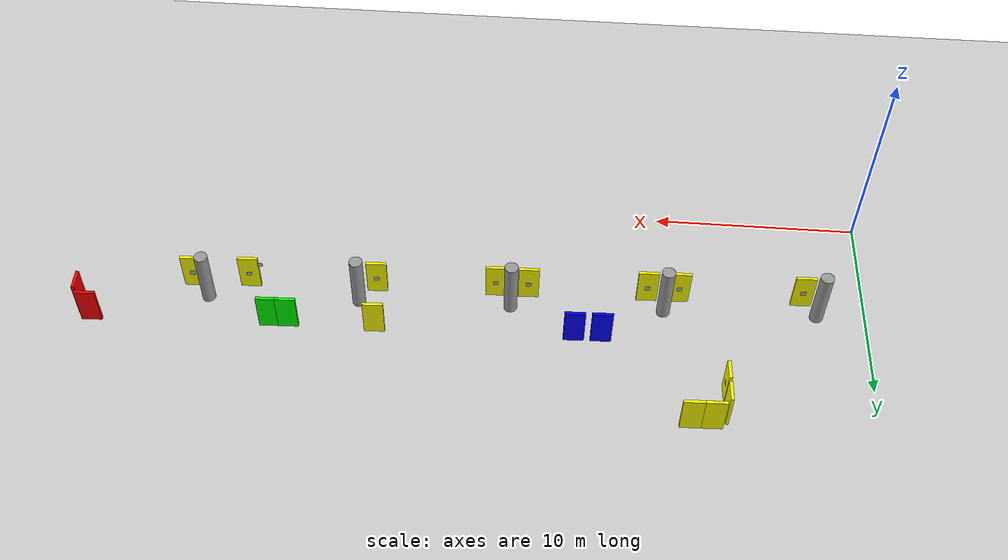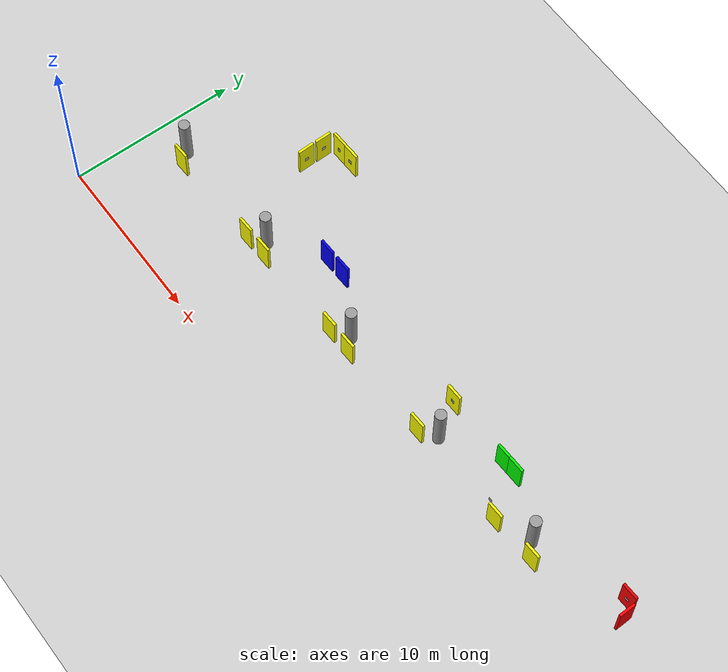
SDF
<sdf version="1.5">
 <world name="default">
  <include><uri>model://sun</uri></include>
  <include><uri>model://ground_plane</uri></include>
  <include><uri>model://5x5_1000-10</uri><pose>29.507050 6.023 1.65 0.0 0.0 1.60479633</pose></include>
  <include>
   <uri>model://pillar</uri>
   <name>pillar1</name>
   <static>true</static>
   <pose>32.100510 6.769004 0.0 0.0 0.0 0.0</pose>
  </include>
  <include>
   <uri>model://pillar</uri>
   <name>pillar2</name>
   <static>true</static>
   <pose>2.342716 5.768001 0.0 0.0 0.0 0.0</pose>
  </include>
  <include>
   <uri>model://pillar</uri>
   <name>pillar3</name>
   <static>true</static>
   <pose>17.231846 6.274395 0.0 0.0 0.0 0.0</pose>
  </include>
  <include>
   <uri>model://pillar</uri>
   <name>pillar4</name>
   <static>true</static>
   <pose>24.666746 6.505016 0.0 0.0 0.0 0.0</pose>
  </include>
  <include>
   <uri>model://pillar</uri>
   <name>pillar5</name>
   <static>true</static>
   <pose>9.784185 6.009955 0.0 0.0 0.0 0.0</pose>
  </include>
  <include>
   <uri>model://door_yellow</uri>
   <name>door1</name>
   <static>true</static>
   <pose>3.050000 5.000000 0.0 0.0 0.0 0.034</pose>
  </include>
  <include>
   <uri>model://5x5_1000-0</uri>
   <name>yellowmarker1</name>
   <pose>3.05 5.075 0.8 0.0 0.0 1.60479633</pose>
  </include>
  <include>
   <uri>model://door_yellow</uri>
   <name>door2</name>
   <static>true</static>
   <pose>9.050000 5.200000 0.0 0.0 0.0 0.034000</pose>
  </include>
  <include>
   <uri>model://5x5_1000-0</uri>
   <name>yellowmarker2</name>
   <pose>9.050000 5.275000 0.8 0.0 0.0 1.60479633</pose>
  </include>
  <include>
   <uri>model://door_yellow</uri>
   <name>door3</name>
   <static>true</static>
   <pose>10.60000 5.250000 0.0 0.0 0.0 0.034000</pose>
  </include>
  <include>
   <uri>model://5x5_1000-0</uri>
   <name>yellowmarker3</name>
   <pose>10.60000 5.325000 0.8 0.0 0.0 1.60479633</pose>
  </include>
  <include>
   <uri>model://door_yellow</uri>
   <name>door4</name>
   <static>true</static>
   <pose>16.40000 5.470000 0.0 0.0 0.0 0.034000</pose>
  </include>
  <include>
   <uri>model://5x5_1000-0</uri>
   <name>yellowmarker4</name>
   <pose>16.40000 5.545000 0.8 0.0 0.0 1.60479633</pose>
  </include>
  <include>
   <uri>model://door_yellow</uri>
   <name>door5</name>
   <static>true</static>
   <pose>18.0000 5.490000 0.0 0.0 0.0 0.034000</pose>
  </include>
  <include>
   <uri>model://5x5_1000-0</uri>
   <name>yellowmarker5</name>
   <pose>18.0000 5.565000 0.8 0.0 0.0 1.60479633</pose>
  </include>
  <include>
   <uri>model://door_yellow</uri>
   <name>door6</name>
   <static>true</static>
   <pose>23.8500 5.680000 0.0 0.0 0.0 0.034000</pose>
  </include>
  <include>
   <uri>model://5x5_1000-0</uri>
   <name>yellowmarker6</name>
   <pose>23.8500 5.755000 0.8 0.0 0.0 1.60479633</pose>
  </include>
  <include>
   <uri>model://door_yellow</uri>
   <name>door7</name>
   <static>true</static>
   <pose>30.1500 5.850000 0.0 0.0 0.0 0.034000</pose>
  </include>
  <include>
   <uri>model://5x5_1000-0</uri>
   <name>yellowmarker7</name>
   <pose>30.1500 5.9250000 0.8 0.0 0.0 1.60479633</pose>
  </include>
  <include>
   <uri>model://door_yellow</uri>
   <name>door8</name>
   <static>true</static>
   <pose>32.9500 6.0000 0.0 0.0 0.0 0.034000</pose>
  </include>
  <include>
   <uri>model://5x5_1000-0</uri>
   <name>yellowmarker8</name>
   <pose>32.9500 6.07500 0.8 0.0 0.0 1.60479633</pose>
  </include>
  <include>
   <uri>model://door_red</uri>
   <name>door9</name>
   <static>true</static>
   <pose>38.1500 7.8000 0.0 0.0 0.0 1.60479633</pose>
  </include>
  <include>
   <uri>model://5x5_1000-1</uri>
   <name>redmarker9</name>
   <pose>38.07500 7.8000 0.8 0.0 0.0 3.17559265679</pose>
  </include>
  <include>
   <uri>model://door_red</uri>
   <name>door10</name>
   <static>true</static>
   <pose>37.5 8.55 0.0 0.0 0.0 0.034</pose>
  </include>
  <include>
   <uri>model://5x5_1000-1</uri>
   <name>redmarker10</name>
   <pose>37.5 8.475 0.8 0.0 0.0 -1.53679633</pose>
  </include>
  <include>
   <uri>model://door_green</uri>
   <name>door11</name>
   <static>true</static>
   <pose>28.8 8.25 0.0 0.0 0.0 0.034</pose>
  </include>
  <include>
   <uri>model://door_green</uri>
   <name>door12</name>
   <static>true</static>
   <pose>27.9 8.22 0.0 0.0 0.0 0.034</pose>
  </include>
  <include>
   <uri>model://door_yellow</uri>
   <name>door13</name>
   <static>true</static>
   <pose>23.700 8.2000 0.0 0.0 0.0 0.034000</pose>
  </include>
  <include>
   <uri>model://5x5_1000-0</uri>
   <name>yellowmarker13</name>
   <pose>23.700 8.12500 0.8 0.0 0.0 -1.53679633</pose>
  </include>
  <include>
   <uri>model://door_blue</uri>
   <name>door14</name>
   <static>true</static>
   <pose>14.100 8.0000 0.0 0.0 0.0 0.034000</pose>
  </include>
  <include>
   <uri>model://door_blue</uri>
   <name>door15</name>
   <static>true</static>
   <pose>12.800 7.9600 0.0 0.0 0.0 0.034000</pose>
  </include>
  <include>
   <uri>model://door_yellow</uri>
   <name>door16</name>
   <static>true</static>
   <pose>8.65 12.5800 0.0 0.0 0.0 0.034000</pose>
  </include>
  <include>
   <uri>model://5x5_1000-0</uri>
   <name>yellowmarker16</name>
   <pose>8.65 12.5050 0.8 0.0 0.0 -1.53679633</pose>
  </include>
  <include>
   <uri>model://door_yellow</uri>
   <name>door17</name>
   <static>true</static>
   <pose>7.65 12.5500 0.0 0.0 0.0 0.034000</pose>
  </include>
  <include>
   <uri>model://5x5_1000-0</uri>
   <name>yellowmarker17</name>
   <pose>7.65 12.4750 0.8 0.0 0.0 -1.53679633</pose>
  </include>
  <include>
   <uri>model://door_yellow</uri>
   <name>door18</name>
   <static>true</static>
   <pose>6.98 11.85 0.0 0.0 0.0 1.60479633</pose>
  </include>
  <include>
   <uri>model://5x5_1000-0</uri>
   <name>yellowmarker18</name>
   <pose>7.055 11.85 0.8 0.0 0.0 0.034</pose>
  </include>
  <include>
   <uri>model://door_yellow</uri>
   <name>door19</name>
   <static>true</static>
   <pose>7.0 10.68 0.0 0.0 0.0 1.60479633</pose>
  </include>
  <include>
   <uri>model://5x5_1000-0</uri>
   <name>yellowmarker19</name>
   <pose>7.075 10.68 0.8 0.0 0.0 0.034</pose>
  </include>
 </world>
</sdf>

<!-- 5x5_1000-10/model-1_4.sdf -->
<sdf version="1.4">
  <model name="5x5_1000-10">
    <static>true</static>
    <link name="link">
      <visual name="visual">
        <geometry>
          <mesh>
            <uri>model://5x5_1000-10/meshes/5x5_1000-10.dae</uri>
          <scale>0.5 0.5 0.5</scale></mesh>
        </geometry>
      </visual>
    </link>
  </model>
</sdf>

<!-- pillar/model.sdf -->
<sdf version='1.6'>
  <model name='pillar'>
    <link name='link'>
      <pose frame=''>0 0 1.5 0 -0 0</pose>
      <inertial>
        <mass>1</mass>
        <inertia>
          <ixx>0.145833</ixx>
          <ixy>0</ixy>
          <ixz>0</ixz>
          <iyy>0.145833</iyy>
          <iyz>0</iyz>
          <izz>0.125</izz>
        </inertia>
        <pose frame=''>0 0 0 0 -0 0</pose>
      </inertial>
      <self_collide>0</self_collide>
      <kinematic>0</kinematic>
      <gravity>1</gravity>
      <visual name='visual'>
        <geometry>
          <cylinder>
            <radius>0.325</radius>
            <length>3</length>
          </cylinder>
        </geometry>
        <material>
          <script>
            <name>Gazebo/Grey</name>
            <uri>file://media/materials/scripts/gazebo.material</uri>
          </script>
          <shader type='pixel'>
            <normal_map>__default__</normal_map>
          </shader>
          <ambient>0.3 0.3 0.3 1</ambient>
          <diffuse>0.7 0.7 0.7 1</diffuse>
          <specular>0.01 0.01 0.01 1</specular>
          <emissive>0 0 0 1</emissive>
        </material>
        <pose frame=''>0 0 0 0 -0 0</pose>
        <transparency>0</transparency>
        <cast_shadows>1</cast_shadows>
      </visual>
      <collision name='collision'>
        <laser_retro>0</laser_retro>
        <max_contacts>10</max_contacts>
        <pose frame=''>0 0 0 0 -0 0</pose>
        <geometry>
          <cylinder>
            <radius>0.325</radius>
            <length>3</length>
          </cylinder>
        </geometry>
        <surface>
          <friction>
            <ode>
              <mu>1</mu>
              <mu2>1</mu2>
              <fdir1>0 0 0</fdir1>
              <slip1>0</slip1>
              <slip2>0</slip2>
            </ode>
            <torsional>
              <coefficient>1</coefficient>
              <patch_radius>0</patch_radius>
              <surface_radius>0</surface_radius>
              <use_patch_radius>1</use_patch_radius>
              <ode>
                <slip>0</slip>
              </ode>
            </torsional>
          </friction>
          <bounce>
            <restitution_coefficient>0</restitution_coefficient>
            <threshold>1e+06</threshold>
          </bounce>
          <contact>
            <collide_without_contact>0</collide_without_contact>
            <collide_without_contact_bitmask>1</collide_without_contact_bitmask>
            <collide_bitmask>1</collide_bitmask>
            <ode>
              <soft_cfm>0</soft_cfm>
              <soft_erp>0.2</soft_erp>
              <kp>1e+13</kp>
              <kd>1</kd>
              <max_vel>0.01</max_vel>
              <min_depth>0</min_depth>
            </ode>
            <bullet>
              <split_impulse>1</split_impulse>
              <split_impulse_penetration_threshold>-0.01</split_impulse_penetration_threshold>
              <soft_cfm>0</soft_cfm>
              <soft_erp>0.2</soft_erp>
              <kp>1e+13</kp>
              <kd>1</kd>
            </bullet>
          </contact>
        </surface>
      </collision>
    </link>
    <static>1</static>
    <allow_auto_disable>1</allow_auto_disable>
  </model>
</sdf>

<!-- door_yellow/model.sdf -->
<sdf version='1.6'>
  <model name='door_yellow'>
    <link name='link'>
      <pose frame=''>0 0 1 0 -0 0</pose>
      <inertial>
        <mass>1</mass>
        <inertia>
          <ixx>0.166667</ixx>
          <ixy>0</ixy>
          <ixz>0</ixz>
          <iyy>0.166667</iyy>
          <iyz>0</iyz>
          <izz>0.166667</izz>
        </inertia>
        <pose frame=''>0 0 1 0 -0 0</pose>
      </inertial>
      <self_collide>0</self_collide>
      <kinematic>0</kinematic>
      <gravity>1</gravity>
      <visual name='visual'>
        <geometry>
          <box>
            <size>1 0.15 2</size>
          </box>
        </geometry>
        <material>
          <script>
            <name>Gazebo/Grey</name>
            <uri>file://media/materials/scripts/gazebo.material</uri>
          </script>
          <shader type='pixel'>
            <normal_map>__default__</normal_map>
          </shader>
          <ambient>1 1 0 1</ambient>
          <diffuse>0.7 0.7 0.7 1</diffuse>
          <specular>0.01 0.01 0.01 1</specular>
          <emissive>0 0 0 1</emissive>
        </material>
        <pose frame=''>0 0 0 0 -0 0</pose>
        <transparency>0</transparency>
        <cast_shadows>1</cast_shadows>
      </visual>
      <collision name='collision'>
        <laser_retro>0</laser_retro>
        <max_contacts>10</max_contacts>
        <pose frame=''>0 0 0 0 -0 0</pose>
        <geometry>
          <box>
            <size>1 0.15 2</size>
          </box>
        </geometry>
        <surface>
          <friction>
            <ode>
              <mu>1</mu>
              <mu2>1</mu2>
              <fdir1>0 0 0</fdir1>
              <slip1>0</slip1>
              <slip2>0</slip2>
            </ode>
            <torsional>
              <coefficient>1</coefficient>
              <patch_radius>0</patch_radius>
              <surface_radius>0</surface_radius>
              <use_patch_radius>1</use_patch_radius>
              <ode>
                <slip>0</slip>
              </ode>
            </torsional>
          </friction>
          <bounce>
            <restitution_coefficient>0</restitution_coefficient>
            <threshold>1e+06</threshold>
          </bounce>
          <contact>
            <collide_without_contact>0</collide_without_contact>
            <collide_without_contact_bitmask>1</collide_without_contact_bitmask>
            <collide_bitmask>1</collide_bitmask>
            <ode>
              <soft_cfm>0</soft_cfm>
              <soft_erp>0.2</soft_erp>
              <kp>1e+13</kp>
              <kd>1</kd>
              <max_vel>0.01</max_vel>
              <min_depth>0</min_depth>
            </ode>
            <bullet>
              <split_impulse>1</split_impulse>
              <split_impulse_penetration_threshold>-0.01</split_impulse_penetration_threshold>
              <soft_cfm>0</soft_cfm>
              <soft_erp>0.2</soft_erp>
              <kp>1e+13</kp>
              <kd>1</kd>
            </bullet>
          </contact>
        </surface>
      </collision>
    </link>
    <static>1</static>
    <allow_auto_disable>1</allow_auto_disable>
  </model>
</sdf>

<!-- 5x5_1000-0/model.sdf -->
<sdf version="1.6">
  <model name="5x5_1000-0">
    <static>true</static>
    <link name="link">
      <visual name="visual">
        <geometry>
          <mesh>
            <uri>model://5x5_1000-0/meshes/5x5_1000-0.dae</uri>
          <scale>0.5 0.5 0.5</scale></mesh>
        </geometry>
      </visual>
    </link>
  </model>
</sdf>

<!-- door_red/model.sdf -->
<sdf version='1.6'>
  <model name='door_red'>
    <link name='link'>
      <pose frame=''>0 0 1 0 -0 0</pose>
      <inertial>
        <mass>1</mass>
        <inertia>
          <ixx>0.166667</ixx>
          <ixy>0</ixy>
          <ixz>0</ixz>
          <iyy>0.166667</iyy>
          <iyz>0</iyz>
          <izz>0.166667</izz>
        </inertia>
        <pose frame=''>0 0 1 0 -0 0</pose>
      </inertial>
      <self_collide>0</self_collide>
      <kinematic>0</kinematic>
      <gravity>1</gravity>
      <visual name='visual'>
        <geometry>
          <box>
            <size>1 0.15 2</size>
          </box>
        </geometry>
        <material>
          <script>
            <name>Gazebo/Grey</name>
            <uri>file://media/materials/scripts/gazebo.material</uri>
          </script>
          <shader type='pixel'>
            <normal_map>__default__</normal_map>
          </shader>
          <ambient>1 0 0 1</ambient>
          <diffuse>0.7 0.7 0.7 1</diffuse>
          <specular>0.01 0.01 0.01 1</specular>
          <emissive>0 0 0 1</emissive>
        </material>
        <pose frame=''>0 0 0 0 -0 0</pose>
        <transparency>0</transparency>
        <cast_shadows>1</cast_shadows>
      </visual>
      <collision name='collision'>
        <laser_retro>0</laser_retro>
        <max_contacts>10</max_contacts>
        <pose frame=''>0 0 0 0 -0 0</pose>
        <geometry>
          <box>
            <size>1 0.15 2</size>
          </box>
        </geometry>
        <surface>
          <friction>
            <ode>
              <mu>1</mu>
              <mu2>1</mu2>
              <fdir1>0 0 0</fdir1>
              <slip1>0</slip1>
              <slip2>0</slip2>
            </ode>
            <torsional>
              <coefficient>1</coefficient>
              <patch_radius>0</patch_radius>
              <surface_radius>0</surface_radius>
              <use_patch_radius>1</use_patch_radius>
              <ode>
                <slip>0</slip>
              </ode>
            </torsional>
          </friction>
          <bounce>
            <restitution_coefficient>0</restitution_coefficient>
            <threshold>1e+06</threshold>
          </bounce>
          <contact>
            <collide_without_contact>0</collide_without_contact>
            <collide_without_contact_bitmask>1</collide_without_contact_bitmask>
            <collide_bitmask>1</collide_bitmask>
            <ode>
              <soft_cfm>0</soft_cfm>
              <soft_erp>0.2</soft_erp>
              <kp>1e+13</kp>
              <kd>1</kd>
              <max_vel>0.01</max_vel>
              <min_depth>0</min_depth>
            </ode>
            <bullet>
              <split_impulse>1</split_impulse>
              <split_impulse_penetration_threshold>-0.01</split_impulse_penetration_threshold>
              <soft_cfm>0</soft_cfm>
              <soft_erp>0.2</soft_erp>
              <kp>1e+13</kp>
              <kd>1</kd>
            </bullet>
          </contact>
        </surface>
      </collision>
    </link>
    <static>1</static>
    <allow_auto_disable>1</allow_auto_disable>
  </model>
</sdf>

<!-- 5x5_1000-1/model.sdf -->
<sdf version="1.6">
  <model name="5x5_1000-1">
    <static>true</static>
    <link name="link">
      <visual name="visual">
        <geometry>
          <mesh>
            <uri>model://5x5_1000-1/meshes/5x5_1000-1.dae</uri>
          <scale>0.5 0.5 0.5</scale></mesh>
        </geometry>
      </visual>
    </link>
  </model>
</sdf>

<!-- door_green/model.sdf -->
<sdf version='1.6'>
  <model name='door_green'>
    <link name='link'>
      <pose frame=''>0 0 1 0 -0 0</pose>
      <inertial>
        <mass>1</mass>
        <inertia>
          <ixx>0.166667</ixx>
          <ixy>0</ixy>
          <ixz>0</ixz>
          <iyy>0.166667</iyy>
          <iyz>0</iyz>
          <izz>0.166667</izz>
        </inertia>
        <pose frame=''>0 0 1 0 -0 0</pose>
      </inertial>
      <self_collide>0</self_collide>
      <kinematic>0</kinematic>
      <gravity>1</gravity>
      <visual name='visual'>
        <geometry>
          <box>
            <size>1 0.15 2</size>
          </box>
        </geometry>
        <material>
          <script>
            <name>Gazebo/Grey</name>
            <uri>file://media/materials/scripts/gazebo.material</uri>
          </script>
          <shader type='pixel'>
            <normal_map>__default__</normal_map>
          </shader>
          <ambient>0 1 0 1</ambient>
          <diffuse>0.7 0.7 0.7 1</diffuse>
          <specular>0.01 0.01 0.01 1</specular>
          <emissive>0 0 0 1</emissive>
        </material>
        <pose frame=''>0 0 0 0 -0 0</pose>
        <transparency>0</transparency>
        <cast_shadows>1</cast_shadows>
      </visual>
      <collision name='collision'>
        <laser_retro>0</laser_retro>
        <max_contacts>10</max_contacts>
        <pose frame=''>0 0 0 0 -0 0</pose>
        <geometry>
          <box>
            <size>1 0.15 2</size>
          </box>
        </geometry>
        <surface>
          <friction>
            <ode>
              <mu>1</mu>
              <mu2>1</mu2>
              <fdir1>0 0 0</fdir1>
              <slip1>0</slip1>
              <slip2>0</slip2>
            </ode>
            <torsional>
              <coefficient>1</coefficient>
              <patch_radius>0</patch_radius>
              <surface_radius>0</surface_radius>
              <use_patch_radius>1</use_patch_radius>
              <ode>
                <slip>0</slip>
              </ode>
            </torsional>
          </friction>
          <bounce>
            <restitution_coefficient>0</restitution_coefficient>
            <threshold>1e+06</threshold>
          </bounce>
          <contact>
            <collide_without_contact>0</collide_without_contact>
            <collide_without_contact_bitmask>1</collide_without_contact_bitmask>
            <collide_bitmask>1</collide_bitmask>
            <ode>
              <soft_cfm>0</soft_cfm>
              <soft_erp>0.2</soft_erp>
              <kp>1e+13</kp>
              <kd>1</kd>
              <max_vel>0.01</max_vel>
              <min_depth>0</min_depth>
            </ode>
            <bullet>
              <split_impulse>1</split_impulse>
              <split_impulse_penetration_threshold>-0.01</split_impulse_penetration_threshold>
              <soft_cfm>0</soft_cfm>
              <soft_erp>0.2</soft_erp>
              <kp>1e+13</kp>
              <kd>1</kd>
            </bullet>
          </contact>
        </surface>
      </collision>
    </link>
    <static>1</static>
    <allow_auto_disable>1</allow_auto_disable>
  </model>
</sdf>

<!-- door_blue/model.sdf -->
<sdf version='1.6'>
  <model name='door_blue'>
    <link name='link'>
      <pose frame=''>0 0 1 0 -0 0</pose>
      <inertial>
        <mass>1</mass>
        <inertia>
          <ixx>0.166667</ixx>
          <ixy>0</ixy>
          <ixz>0</ixz>
          <iyy>0.166667</iyy>
          <iyz>0</iyz>
          <izz>0.166667</izz>
        </inertia>
        <pose frame=''>0 0 1 0 -0 0</pose>
      </inertial>
      <self_collide>0</self_collide>
      <kinematic>0</kinematic>
      <gravity>1</gravity>
      <visual name='visual'>
        <geometry>
          <box>
            <size>1 0.15 2</size>
          </box>
        </geometry>
        <material>
          <script>
            <name>Gazebo/Grey</name>
            <uri>file://media/materials/scripts/gazebo.material</uri>
          </script>
          <shader type='pixel'>
            <normal_map>__default__</normal_map>
          </shader>
          <ambient>0 0 1 1</ambient>
          <diffuse>0.7 0.7 0.7 1</diffuse>
          <specular>0.01 0.01 0.01 1</specular>
          <emissive>0 0 0 1</emissive>
        </material>
        <pose frame=''>0 0 0 0 -0 0</pose>
        <transparency>0</transparency>
        <cast_shadows>1</cast_shadows>
      </visual>
      <collision name='collision'>
        <laser_retro>0</laser_retro>
        <max_contacts>10</max_contacts>
        <pose frame=''>0 0 0 0 -0 0</pose>
        <geometry>
          <box>
            <size>1 0.15 2</size>
          </box>
        </geometry>
        <surface>
          <friction>
            <ode>
              <mu>1</mu>
              <mu2>1</mu2>
              <fdir1>0 0 0</fdir1>
              <slip1>0</slip1>
              <slip2>0</slip2>
            </ode>
            <torsional>
              <coefficient>1</coefficient>
              <patch_radius>0</patch_radius>
              <surface_radius>0</surface_radius>
              <use_patch_radius>1</use_patch_radius>
              <ode>
                <slip>0</slip>
              </ode>
            </torsional>
          </friction>
          <bounce>
            <restitution_coefficient>0</restitution_coefficient>
            <threshold>1e+06</threshold>
          </bounce>
          <contact>
            <collide_without_contact>0</collide_without_contact>
            <collide_without_contact_bitmask>1</collide_without_contact_bitmask>
            <collide_bitmask>1</collide_bitmask>
            <ode>
              <soft_cfm>0</soft_cfm>
              <soft_erp>0.2</soft_erp>
              <kp>1e+13</kp>
              <kd>1</kd>
              <max_vel>0.01</max_vel>
              <min_depth>0</min_depth>
            </ode>
            <bullet>
              <split_impulse>1</split_impulse>
              <split_impulse_penetration_threshold>-0.01</split_impulse_penetration_threshold>
              <soft_cfm>0</soft_cfm>
              <soft_erp>0.2</soft_erp>
              <kp>1e+13</kp>
              <kd>1</kd>
            </bullet>
          </contact>
        </surface>
      </collision>
    </link>
    <static>1</static>
    <allow_auto_disable>1</allow_auto_disable>
  </model>
</sdf>
